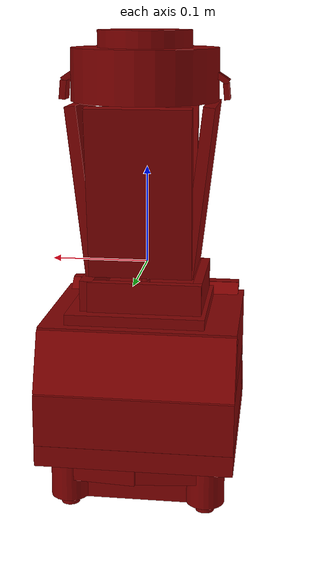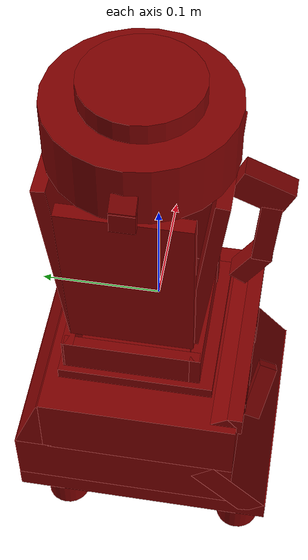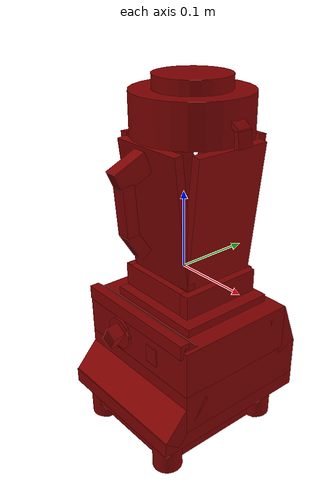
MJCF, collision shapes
<?xml version='1.0' encoding='UTF-8'?>
<mujoco model="model">
  <option timestep="0.002" gravity="0.0 0.0 -9.81"/>
  <compiler angle="radian"/>
  <asset>
    <mesh file="visuals/Blade001.obj" name="Blade001_vis"/>
    <mesh file="visuals/Body001.obj" name="Body001_vis"/>
    <mesh file="visuals/Button001.obj" name="Button001_vis"/>
    <mesh file="visuals/Jug001.obj" name="Jug001_vis"/>
    <mesh file="visuals/Jug001_Clear.obj" name="Jug001_Clear_vis"/>
    <mesh file="visuals/Knob001.obj" name="Knob001_vis"/>
    <mesh file="visuals/Lid001.obj" name="Lid001_vis"/>
    <mesh file="visuals/Lid001_Clear.obj" name="Lid001_Clear_vis"/>
    <texture file="visuals/T_BC001.png" name="Body001_material" type="2d"/>
    <material name="Body001_material" rgba="1 1 1 1.0" texture="Body001_material" shininess="0.12328028678894" specular="5"/>
    <texture file="visuals/T_BC001.png" name="Button001_material" type="2d"/>
    <material name="Button001_material" rgba="1 1 1 1.0" texture="Button001_material" shininess="0.2512328028678894" specular="0.3103448502657381"/>
    <texture file="visuals/T_BC001.png" name="Jug001_material" type="2d"/>
    <material name="Jug001_material" rgba="1 1 1 1.0" texture="Jug001_material" shininess="0.12328028678894" specular="0.657381"/>
    <material name="Jug001_Clear_material" rgba="0.034405842423439026 0.034405842423439026 0.034405842423439026 0.800000011920929" shininess="0.2512328028678894" specular="0.3103448502657381"/>
    <texture file="visuals/T_BC001.png" name="Blade001_material" type="2d"/>
    <material name="Blade001_material" rgba="1 1 1 1.0" texture="Blade001_material" shininess="0.2512328028678894" specular="1"/>
    <texture file="visuals/T_BC001.png" name="Lid001_material" type="2d"/>
    <material name="Lid001_material" rgba="1 1 1 1.0" texture="Lid001_material" shininess="0.2512328028678894" specular="1"/>
    <material name="Lid001_Clear_material" rgba="0.034405842423439026 0.034405842423439026 0.034405842423439026 0.800000011920929" shininess="0.2512328028678894" specular="0.3103448502657381"/>
    <texture file="visuals/T_BC001.png" name="Knob001_material" type="2d"/>
    <material name="Knob001_material" rgba="1 1 1 1.0" texture="Knob001_material" shininess="0.2512328028678894" specular="0.3103448502657381"/>
  </asset>
  <default>
    <default class="visual">
      <geom conaffinity="0" contype="0" group="1" type="mesh"/>
    </default>
    <default class="collision">
      <geom group="0" rgba="0.5 0 0 0.5"/>
    </default>
    <default class="spawn">
      <geom group="0" rgba="1 1 1 0.5" contype="0" conaffinity="0"/>
      <site group="0" rgba="1 1 1 0.5"/>
    </default>
    <default class="region">
      <geom group="1" conaffinity="0" contype="0" rgba="0 1 0 0"/>
    </default>
  </default>
  <worldbody>
    <body>
      <body name="object">
        <geom mesh="Body001_vis" type="mesh" solimp="0.998 0.998 0.001" solref="0.001 1" friction="0.95 0.3 0.1" class="visual" material="Body001_material"/>
        <geom class="collision" type="box" pos="0.000042 -0.004744 -0.210633" size="0.07199949771165848 0.08503106981515884 0.023351695388555527" quat="1.0 0.0 0.0 0.0" density="1000.0"/>
        <geom class="collision" type="box" pos="0.000000 -0.000146 -0.176502" size="0.09943115711212158 0.11336910724639893 0.010778299532830715" quat="1.0 0.0 0.0 0.0" density="1000.0"/>
        <geom class="collision" type="box" pos="-0.000000 0.016148 -0.139473" size="0.09943115711212158 0.09688158333301544 0.02712399698793888" quat="1.0 0.0 0.0 0.0" density="1000.0"/>
        <geom class="collision" type="box" pos="-0.003766 0.013447 -0.033897" size="0.047960978001356125 0.046660613268613815 0.006251452956348658" quat="1.0 0.0 0.0 0.0" density="1000.0"/>
        <geom class="collision" type="box" pos="0.000042 -0.012701 -0.186091" size="0.07199949771165848 0.09150273352861404 0.023351695388555527" quat="1.0 0.0 0.0 0.0" density="1000.0"/>
        <geom class="collision" type="box" pos="0.029753 0.086123 -0.196379" size="0.03190840035676956 0.013986317440867424 0.011905279941856861" quat="0.9989776611328125 0.0 -0.0 -0.045206304639577866" density="1000.0"/>
        <geom class="collision" type="box" pos="-0.031553 0.083105 -0.196085" size="0.03190840035676956 0.013986317440867424 0.011905279941856861" quat="0.9983143210411072 0.0 0.0 0.0580388642847538" density="1000.0"/>
        <geom class="collision" type="box" pos="0.001283 -0.006293 -0.191801" size="0.08547773212194443 0.08503106981515884 0.004519365262240171" quat="1.0 0.0 0.0 0.0" density="1000.0"/>
        <geom class="collision" type="box" pos="0.000000 -0.078777 -0.147908" size="0.09943116456270218 0.035607967525720596 0.01294387225061655" quat="0.9136365652084351 0.4065319001674652 -9.026821516210708e-17 -5.59480467151051e-24" density="1000.0"/>
        <geom class="collision" type="cylinder" pos="-0.070314 -0.087653 -0.232821" size="0.00947424117475748 0.00947424117475748" quat="1.0 0.0 0.0 0.0" density="1000.0"/>
        <geom class="collision" type="cylinder" pos="-0.070314 -0.087653 -0.208917" size="0.0194860827177763 0.023954443633556366" quat="1.0 0.0 0.0 0.0" density="1000.0"/>
        <geom class="collision" type="cylinder" pos="0.070122 -0.087881 -0.232821" size="0.00947424117475748 0.00947424117475748" quat="1.0 0.0 0.0 0.0" density="1000.0"/>
        <geom class="collision" type="cylinder" pos="0.070122 -0.087881 -0.208917" size="0.0194860827177763 0.023954443633556366" quat="1.0 0.0 0.0 0.0" density="1000.0"/>
        <geom class="collision" type="cylinder" pos="0.070174 0.075987 -0.232821" size="0.00947424117475748 0.00947424117475748" quat="1.0 0.0 0.0 0.0" density="1000.0"/>
        <geom class="collision" type="cylinder" pos="0.070174 0.075987 -0.208917" size="0.0194860827177763 0.023954443633556366" quat="1.0 0.0 0.0 0.0" density="1000.0"/>
        <geom class="collision" type="cylinder" pos="-0.070158 0.076101 -0.232821" size="0.00947424117475748 0.00947424117475748" quat="1.0 0.0 0.0 0.0" density="1000.0"/>
        <geom class="collision" type="cylinder" pos="-0.070158 0.076101 -0.208917" size="0.0194860827177763 0.023954443633556366" quat="1.0 0.0 0.0 0.0" density="1000.0"/>
        <geom class="collision" type="box" pos="-0.000000 0.003452 -0.081817" size="0.09943115711212158 0.08418469876050949 0.031785573810338974" quat="1.0 0.0 0.0 0.0" density="1000.0"/>
        <geom class="collision" type="box" pos="-0.000000 0.086561 -0.086864" size="0.09943114966154099 0.015107588842511177 0.031785573810338974" quat="0.983220100402832 0.18242336809635162 -4.0506124698047957e-17 -7.7919706330921495e-25" density="1000.0"/>
        <geom class="collision" type="box" pos="0.003727 0.010069 -0.048772" size="0.07046279311180115 0.06620841473340988 0.009505023248493671" quat="1.0 0.0 0.0 0.0" density="1000.0"/>
        <geom class="collision" type="box" pos="0.000356 -0.078764 -0.048772" size="0.09373795241117477 0.006440823432058096 0.009505023248493671" quat="1.0 0.0 0.0 0.0" density="1000.0"/>
        <geom class="collision" type="box" pos="0.000356 -0.068966 -0.050224" size="0.09373795241117477 0.006440823432058096 0.009505022317171097" quat="0.894934356212616 0.44619783759117126 0.0 0.0" density="1000.0"/>
        <body name="Button001">
          <joint axis="0.0 1.0 0.0" pos="0.037323 -0.082954 -0.082423" limited="true" name="Button001_joint" range="0.0 0.002" type="slide" damping="1" frictionloss="1" armature=".01" stiffness="0.05"/>
          <geom mesh="Button001_vis" type="mesh" solimp="0.998 0.998 0.001" solref="0.001 1" friction="0.95 0.3 0.1" class="visual" material="Button001_material"/>
          <geom class="collision" type="box" pos="0.037587 -0.084625 -0.081837" size="0.010003328323364258 0.0008242419571615756 0.01193332765251398" quat="1.0 0.0 0.0 0.0" density="1000.0"/>
        </body>
        <body name="Jug001">
          <joint axis="0.0 0.0 1.0" pos="0.001481 -0.079507 0.100438" limited="true" name="Jug001_joint" range="0.0 0.05" type="slide" damping="1" frictionloss="1" armature=".01" stiffness="0.05"/>
          <geom mesh="Jug001_vis" type="mesh" solimp="0.998 0.998 0.001" solref="0.001 1" friction="0.95 0.3 0.1" class="visual" material="Jug001_material"/>
          <geom class="collision" type="box" pos="0.000973 -0.085812 0.098793" size="0.009137513116002083 0.008098731748759747 0.030896702781319618" quat="0.9994240999221802 0.033934105187654495 0.0 0.0" density="1000.0"/>
          <geom class="collision" type="box" pos="0.001365 -0.075839 0.055220" size="0.00874503143131733 0.007932057604193687 0.018651528283953667" quat="0.9616867899894714 0.274150550365448 0.0 0.0" density="1000.0"/>
          <geom class="collision" type="box" pos="0.001316 -0.079571 0.142089" size="0.008794349618256092 0.013537919148802757 0.021831490099430084" quat="0.8395240306854248 -0.5433225631713867 -0.0 0.0" density="1000.0"/>
          <body name="Jug001_Clear">
            <geom class="region" name="reg_int" type="box" pos="0.0005580000000000029 0.013386500000000003 0.07134599999999999" size="0.056672 0.0563455 0.10844000000000001"/>
            <geom mesh="Jug001_Clear_vis" type="mesh" solimp="0.998 0.998 0.001" solref="0.001 1" friction="0.95 0.3 0.1" class="visual" material="Jug001_Clear_material"/>
            <geom class="collision" type="box" pos="-0.057712 0.013835 0.082794" size="0.005711276549845934 0.051372114568948746 0.08431754261255264" quat="0.9983683228492737 1.9271728888270445e-06 -0.05710252374410629 3.367393946973607e-05" density="1000.0"/>
            <geom class="collision" type="box" pos="0.003479 -0.044659 0.082838" size="0.005711277015507221 0.051372114568948746 0.08431755006313324" quat="0.7059291005134583 0.04037894681096077 -0.04037623107433319 0.7059769034385681" density="1000.0"/>
            <geom class="collision" type="box" pos="0.057681 0.010495 0.082040" size="0.005711276549845934 0.051372114568948746 0.08431754261255264" quat="3.637487316154875e-05 -0.05710252374410629 -2.0803652205358958e-06 -0.9983683228492737" density="1000.0"/>
            <geom class="collision" type="box" pos="-0.001482 0.070399 0.082889" size="0.005711276549845934 0.051372114568948746 0.08431754261255264" quat="0.7059786319732666 -0.04037610441446304 -0.04037903994321823 -0.7059273719787598" density="1000.0"/>
            <geom class="collision" type="box" pos="0.052753 0.011603 -0.021293" size="0.006559801287949085 0.057112209498882294 0.015429945662617683" quat="1.0 0.0 0.0 0.0" density="1000.0"/>
            <geom class="collision" type="box" pos="-0.005829 0.066943 -0.021293" size="0.057111989706754684 0.005001084879040718 0.015429931692779064" quat="1.0 0.0 0.0 0.0" density="1000.0"/>
            <geom class="collision" type="box" pos="-0.058334 0.013287 -0.021293" size="0.0046172006987035275 0.057111889123916626 0.015429917722940445" quat="1.0 0.0 0.0 0.0" density="1000.0"/>
            <geom class="collision" type="box" pos="-0.005840 -0.040367 -0.021293" size="0.05711181461811066 0.004630060400813818 0.015429902821779251" quat="1.0 0.0 0.0 0.0" density="1000.0"/>
            <body name="Blade001">
              <joint axis="0.0 0.0 1.0" pos="-0.000000 0.010063 -0.007816" limited="false" name="Blade001_joint" range="0 360" type="hinge" damping="1" frictionloss="1" armature=".01" stiffness="0.05"/>
              <geom mesh="Blade001_vis" type="mesh" solimp="0.998 0.998 0.001" solref="0.001 1" friction="0.95 0.3 0.1" class="visual" material="Blade001_material"/>
              <geom class="collision" type="cylinder" pos="0.000000 0.010074 -0.012192" size="0.004584804177284241 0.013087698258459568" quat="1.0 0.0 0.0 0.0" density="1000.0"/>
              <geom class="collision" type="cylinder" pos="0.000000 0.010074 0.002870" size="0.009153613820672035 0.0019740283023566008" quat="1.0 0.0 0.0 0.0" density="1000.0"/>
              <geom class="collision" type="cylinder" pos="0.000000 0.010074 0.008004" size="0.002619080478325486 0.0014288165839388967" quat="1.0 0.0 0.0 0.0" density="1000.0"/>
              <geom class="collision" type="cylinder" pos="0.000000 0.010074 0.006216" size="0.0038133717607706785 0.00035864306846633554" quat="1.0 0.0 0.0 0.0" density="1000.0"/>
              <geom class="collision" type="box" pos="-0.017459 0.008503 0.005784" size="0.01940135285258293 0.004977840930223465 0.00013571526505984366" quat="0.9986625909805298 0.0 0.0 0.05170168727636337" density="1000.0"/>
              <geom class="collision" type="box" pos="-0.001229 0.027424 0.005784" size="0.01940135285258293 0.004977840930223465 0.00013571526505984366" quat="0.753109872341156 0.0 -0.0 -0.6578947305679321" density="1000.0"/>
              <geom class="collision" type="box" pos="0.017207 0.011347 0.005784" size="0.01940135471522808 0.004977840930223465 0.00013571526505984366" quat="0.06732738763093948 0.0 -0.0 -0.9977309107780457" density="1000.0"/>
              <geom class="collision" type="box" pos="0.001637 -0.007641 0.007214" size="0.019401350989937782 0.004977840464562178 0.00013571526505984366" quat="0.6578945517539978 0.0 0.0 0.7531100511550903" density="1000.0"/>
            </body>
            <body name="Lid001">
              <joint axis="0.0 0.0 1.0" pos="0.001077 0.012217 0.184941" limited="true" name="Lid001_joint" range="0.0 0.05" type="slide" damping="1" frictionloss="1" armature=".01" stiffness="0.05"/>
              <geom mesh="Lid001_vis" type="mesh" solimp="0.998 0.998 0.001" solref="0.001 1" friction="0.95 0.3 0.1" class="visual" material="Lid001_material"/>
              <geom class="collision" type="cylinder" pos="0.000621 0.012290 0.194102" size="0.07406395673751831 0.02589484490454197" quat="1.0 0.0 0.0 0.0" density="1000.0"/>
              <geom class="collision" type="box" pos="0.082219 0.013012 0.178686" size="0.003188474802300334 0.010518007911741734 0.009555758908390999" quat="0.9989174008369446 0.0 -0.04651924967765808 0.0" density="1000.0"/>
              <geom class="collision" type="box" pos="0.077258 0.012562 0.191802" size="0.0028510557021945715 0.00972927175462246 0.006889546290040016" quat="0.8799977898597717 0.0 -0.4749778211116791 0.0" density="1000.0"/>
              <geom class="collision" type="box" pos="-0.080937 0.012130 0.177938" size="0.0028510557021945715 0.00972927175462246 0.00794191099703312" quat="0.9989174008369446 0.0 0.04651926830410957 0.0" density="1000.0"/>
              <geom class="collision" type="box" pos="-0.076755 0.012130 0.190584" size="0.0028510557021945715 0.00972927175462246 0.006889546290040016" quat="0.8799977898597717 0.0 0.4749777317047119 0.0" density="1000.0"/>
              <body name="Lid001_Clear">
                <geom mesh="Lid001_Clear_vis" type="mesh" solimp="0.998 0.998 0.001" solref="0.001 1" friction="0.95 0.3 0.1" class="visual" material="Lid001_Clear_material"/>
                <geom class="collision" type="cylinder" pos="0.000797 0.012099 0.227503" size="0.04734149947762489 0.009497873485088348" quat="1.0 0.0 0.0 0.0" density="1000.0"/>
              </body>
            </body>
          </body>
        </body>
        <body name="Knob001">
          <joint axis="0.0 1.0 0.0" pos="-0.029850 -0.088566 -0.083451" limited="true" name="Knob001_joint" range="0.0 4.852015320544236" type="hinge" damping="0.05" armature="0.001"/>
          <geom mesh="Knob001_vis" type="mesh" solimp="0.998 0.998 0.001" solref="0.001 1" friction="0.95 0.3 0.1" class="visual" material="Knob001_material"/>
          <geom class="collision" type="cylinder" pos="-0.030460 -0.083444 -0.083350" size="0.021604180335998535 0.001981839071959257" quat="0.7071067094802856 0.7071068286895752 0.0 0.0" density="1000.0"/>
          <geom class="collision" type="box" pos="-0.029224 -0.094733 -0.083768" size="0.007757030893117189 0.009034786373376846 0.023546382784843445" quat="0.3194104731082916 -0.6580164432525635 -0.6640320420265198 0.15508966147899628" density="1000.0"/>
        </body>
        <geom class="region" name="reg_main" type="box" pos="0.0 0.0 0.0" size="0.099431 0.113517 0.241772"/>
      </body>
    </body>
  </worldbody>
  <actuator>
    <motor name="Button001_joint_actuator" joint="Button001_joint" gear="0.5"/>
    <motor name="Jug001_joint_actuator" joint="Jug001_joint" gear="90"/>
    <motor name="Knob001_joint_actuator" joint="Knob001_joint" gear="10"/>
    <motor name="Blade001_joint_actuator" joint="Blade001_joint" gear="20"/>
    <motor name="Lid001_joint_actuator" joint="Lid001_joint" gear="30"/>
  </actuator>
</mujoco>
